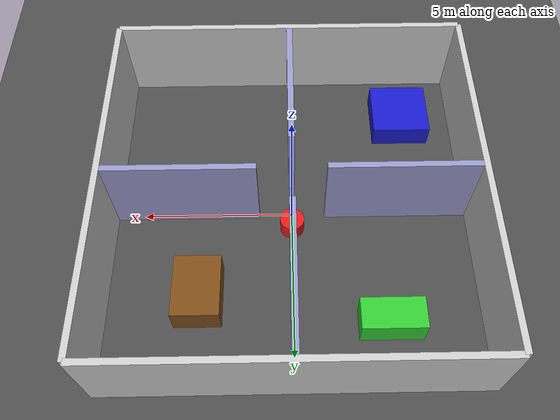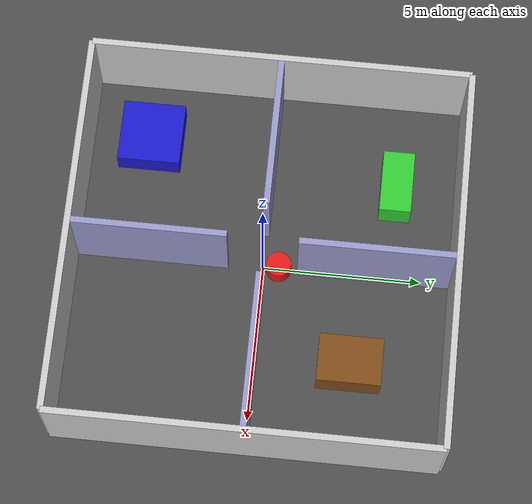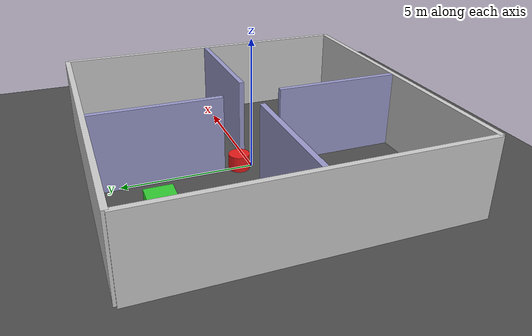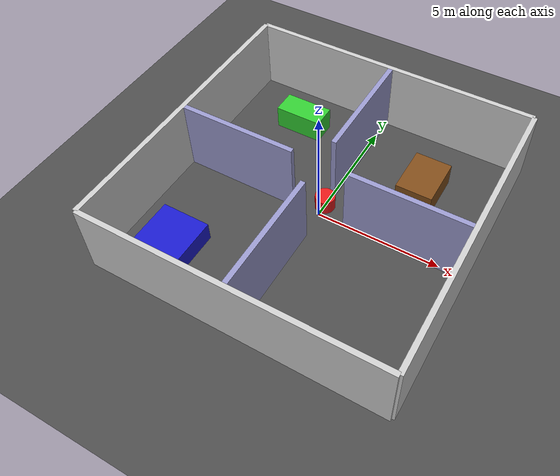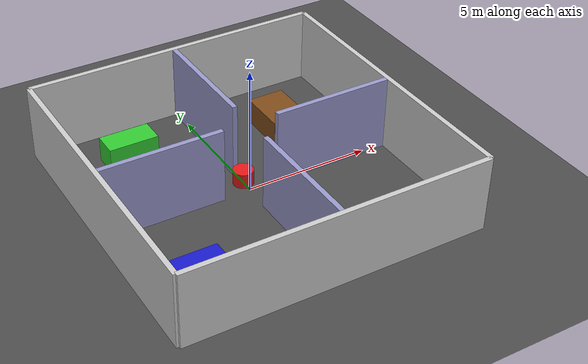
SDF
<?xml version="1.0" ?>
<sdf version="1.9">
  <world name="house_env">
    <physics name="1ms" type="ignored">
      <max_step_size>0.02</max_step_size>
      <real_time_factor>0</real_time_factor>
    </physics>
    <plugin filename="gz-sim-physics-system" name="gz::sim::systems::Physics"/>
    <plugin filename="gz-sim-user-commands-system" name="gz::sim::systems::UserCommands"/>
    <plugin filename="gz-sim-scene-broadcaster-system" name="gz::sim::systems::SceneBroadcaster"/>
    <!-- Lidar sensörü için -->
    <plugin filename="gz-sim-sensors-system" name="gz::sim::systems::Sensors">
      <render_engine>ogre2</render_engine>
    </plugin>

    <!-- Isiklar -->
    <light type="directional" name="sun">
      <cast_shadows>true</cast_shadows>
      <pose>0 0 10 0 0 0</pose>
      <diffuse>0.8 0.8 0.8 1</diffuse>
      <specular>0.2 0.2 0.2 1</specular>
      <attenuation>
        <range>1000</range>
        <constant>0.9</constant>
        <linear>0.01</linear>
        <quadratic>0.001</quadratic>
      </attenuation>
      <direction>-0.5 0.1 -0.9</direction>
    </light>

    <!-- Zemin (Ground) -->
    <model name="ground_plane">
      <static>true</static>
      <link name="link">
        <collision name="collision">
          <geometry>
            <plane>
              <normal>0 0 1</normal>
              <size>20 20</size>
            </plane>
          </geometry>
        </collision>
        <visual name="visual">
          <geometry>
            <plane>
              <normal>0 0 1</normal>
              <size>20 20</size>
            </plane>
          </geometry>
          <material>
            <ambient>0.3 0.3 0.3 1</ambient>
            <diffuse>0.3 0.3 0.3 1</diffuse>
          </material>
        </visual>
      </link>
    </model>

    <!-- EV DUVARLARI VE ODALAR (12x12 m alan) -->
    <!-- Dis Duvarlar (Outer Walls) -->
    <model name="outer_walls">
      <static>true</static>
      <!-- Kuzey Duvar -->
      <link name="north_wall">
        <pose>0 6 1.5 0 0 0</pose>
        <collision name="c"><geometry><box><size>12 0.2 3</size></box></geometry></collision>
        <visual name="v"><geometry><box><size>12 0.2 3</size></box></geometry><material><ambient>0.8 0.8 0.8 1</ambient></material></visual>
      </link>
      <!-- Guney Duvar -->
      <link name="south_wall">
        <pose>0 -6 1.5 0 0 0</pose>
        <collision name="c"><geometry><box><size>12 0.2 3</size></box></geometry></collision>
        <visual name="v"><geometry><box><size>12 0.2 3</size></box></geometry><material><ambient>0.8 0.8 0.8 1</ambient></material></visual>
      </link>
      <!-- Bati Duvar -->
      <link name="west_wall">
        <pose>-6 0 1.5 0 0 0</pose>
        <collision name="c"><geometry><box><size>0.2 12 3</size></box></geometry></collision>
        <visual name="v"><geometry><box><size>0.2 12 3</size></box></geometry><material><ambient>0.8 0.8 0.8 1</ambient></material></visual>
      </link>
      <!-- Dogu Duvar -->
      <link name="east_wall">
        <pose>6 0 1.5 0 0 0</pose>
        <collision name="c"><geometry><box><size>0.2 12 3</size></box></geometry></collision>
        <visual name="v"><geometry><box><size>0.2 12 3</size></box></geometry><material><ambient>0.8 0.8 0.8 1</ambient></material></visual>
      </link>

      <!-- IC DUVARLAR (Cross shape, dividing into 4 rooms) -->
      <!-- Vertical divider (Y ekseninde) Kapı boşluklu -->
      <link name="mid_v1">
        <pose>0 3.5 1.5 0 0 0</pose>
        <collision name="c"><geometry><box><size>0.2 4.8 3</size></box></geometry></collision>
        <visual name="v"><geometry><box><size>0.2 4.8 3</size></box></geometry><material><ambient>0.6 0.6 0.8 1</ambient></material></visual>
      </link>
      <link name="mid_v2">
        <pose>0 -3.5 1.5 0 0 0</pose>
        <collision name="c"><geometry><box><size>0.2 4.8 3</size></box></geometry></collision>
        <visual name="v"><geometry><box><size>0.2 4.8 3</size></box></geometry><material><ambient>0.6 0.6 0.8 1</ambient></material></visual>
      </link>

      <!-- Horizontal divider (X ekseninde) Kapı boşluklu -->
      <link name="mid_h1">
        <pose>3.5 0 1.5 0 0 0</pose>
        <collision name="c"><geometry><box><size>4.8 0.2 3</size></box></geometry></collision>
        <visual name="v"><geometry><box><size>4.8 0.2 3</size></box></geometry><material><ambient>0.6 0.6 0.8 1</ambient></material></visual>
      </link>
      <link name="mid_h2">
        <pose>-3.5 0 1.5 0 0 0</pose>
        <collision name="c"><geometry><box><size>4.8 0.2 3</size></box></geometry></collision>
        <visual name="v"><geometry><box><size>4.8 0.2 3</size></box></geometry><material><ambient>0.6 0.6 0.8 1</ambient></material></visual>
      </link>
    </model>

    <!-- SABIT ENGELLER (Mobilyalar) -->
    <!-- Salon (Kuzey-Bati odasi): Koltuk -->
    <model name="sofa_static">
      <static>true</static>
      <pose>-3 4 0.5 0 0 0</pose>
      <link name="link">
        <collision name="c"><geometry><box><size>2 1 1</size></box></geometry></collision>
        <visual name="v">
          <geometry><box><size>2 1 1</size></box></geometry>
          <material><ambient>0.2 0.8 0.2 1</ambient></material> <!-- Yesil Koltuk -->
        </visual>
      </link>
    </model>

    <!-- Mutfak (Kuzey-Dogu odasi): Mutfak Adasi -->
    <model name="kitchen_island_static">
      <static>true</static>
      <pose>3 3 0.5 0 0 0</pose>
      <link name="link">
        <collision name="c"><geometry><box><size>1.5 2 1</size></box></geometry></collision>
        <visual name="v">
          <geometry><box><size>1.5 2 1</size></box></geometry>
          <material><ambient>0.5 0.3 0.1 1</ambient></material> <!-- Kahverengi Ada -->
        </visual>
      </link>
    </model>

    <!-- Yatak Odasi (Guney-Bati odasi): Yatak -->
    <model name="bed_static">
      <static>true</static>
      <pose>-4 -4 0.4 0 0 0</pose>
      <link name="link">
        <collision name="c"><geometry><box><size>2 2 0.8</size></box></geometry></collision>
        <visual name="v">
          <geometry><box><size>2 2 0.8</size></box></geometry>
          <material><ambient>0.1 0.1 0.8 1</ambient></material> <!-- Mavi Yatak -->
        </visual>
      </link>
    </model>

    <!-- HAREKETLI ENGEL (Robot Supurge / Evcil Hayvan) -->
    <!-- Bu obje salon ve mutfak kapisi arasinda surekli gidip gelecek -->
    <model name="moving_pet">
      <static>false</static>
      <pose>0 0.5 0.3 0 0 0</pose>
      <link name="link">
        <gravity>false</gravity>
        <inertial>
          <mass>1.0</mass>
          <inertia>
            <ixx>0.1</ixx><iyy>0.1</iyy><izz>0.1</izz>
            <ixy>0</ixy><ixz>0</ixz><iyz>0</iyz>
          </inertia>
        </inertial>
        <collision name="c">
          <geometry><cylinder><radius>0.4</radius><length>0.6</length></cylinder></geometry>
        </collision>
        <visual name="v">
          <geometry><cylinder><radius>0.4</radius><length>0.6</length></cylinder></geometry>
          <material><ambient>0.9 0.1 0.1 1</ambient><diffuse>0.9 0.1 0.1 1</diffuse></material> <!-- Kirmizi Hareketli Silindir -->
        </visual>
      </link>
      <!-- Trajectory plugin for movement -->
      <plugin filename="gz-sim-trajectory-system" name="gz::sim::systems::Trajectory">
        <link_name>link</link_name>
        <loop>true</loop>
        <trajectory>
          <waypoint>
            <time>0.0</time>
            <pose>-2 0.5 0.3 0 0 0</pose>
          </waypoint>
          <waypoint>
            <time>4.0</time>
            <pose>2 0.5 0.3 0 0 0</pose>
          </waypoint>
          <waypoint>
            <time>8.0</time>
            <pose>-2 0.5 0.3 0 0 0</pose>
          </waypoint>
        </trajectory>
      </plugin>
    </model>

  </world>
</sdf>
